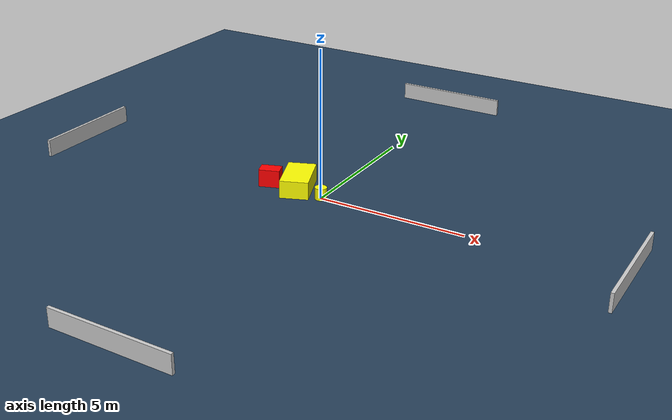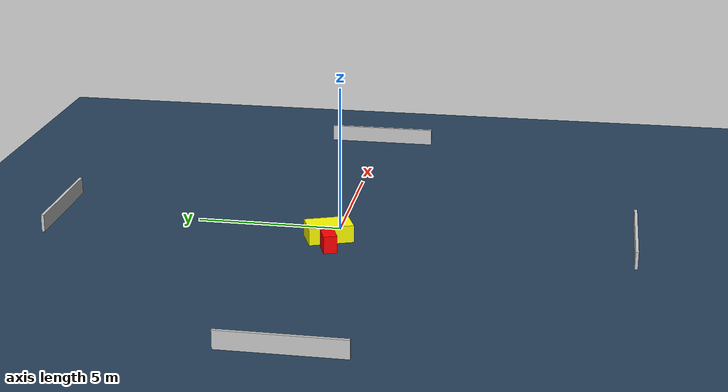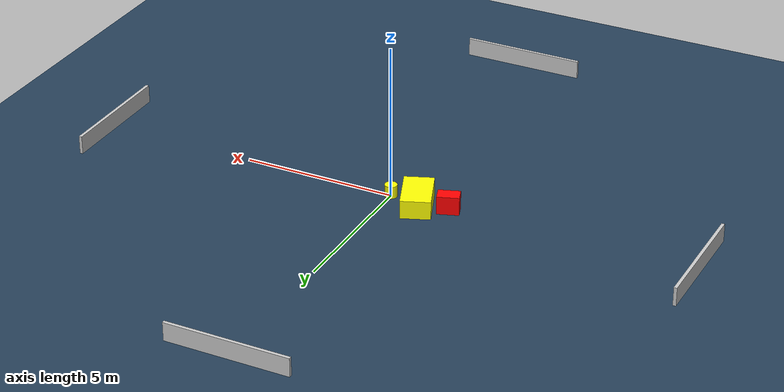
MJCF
<?xml version="1.0" ?>
<mujoco model="generated_environment">
  <option timestep="0.01" integrator="RK4" cone="elliptic"/>
  <default>
    <geom density="1"/>
  </default>
  <asset>
    <texture builtin="gradient" height="3072" name="skybox" rgb1="0.3 0.5 0.7" rgb2="0 0 0" type="skybox" width="512"/>
    <texture builtin="checker" height="300" name="groundplane" rgb1="0.2 0.3 0.4" rgb2="0.1 0.2 0.3" type="2d" width="300"/>
    <material name="groundplane" reflectance="0.2" texrepeat="5 5" texture="groundplane"/>
  </asset>
  <worldbody>
    <light dir="0 0 -1" directional="true" pos="0 0 1.5"/>
    <geom condim="3" friction="0.5 0.005 0.001" material="groundplane" name="floor" pos="0 0 0" size="0 0 0.05" type="plane"/>
    <body name="walls">
      <geom name="wall_1" condim="4" pos="-10.0 0.0 0.3" rgba="0.800000011920929 0.800000011920929 0.800000011920929 1.0" size="0.05 2.0 0.3" type="box"/>
      <geom name="wall_2" condim="4" pos="10.0 0.0 0.3" rgba="0.800000011920929 0.800000011920929 0.800000011920929 1.0" size="0.05 2.0 0.3" type="box"/>
      <geom name="wall_3" condim="4" pos="0.0 -10.0 0.3" rgba="0.800000011920929 0.800000011920929 0.800000011920929 1.0" size="2.0 0.05 0.3" type="box"/>
      <geom name="wall_4" condim="4" pos="0.0 10.0 0.3" rgba="0.800000011920929 0.800000011920929 0.800000011920929 1.0" size="2.0 0.05 0.3" type="box"/>
    </body>
    <body name="robot">
      <joint name="joint_x" type="slide" pos="0 0 0" axis="1 0 0"/>
      <joint name="joint_y" type="slide" pos="0 0 0" axis="0 1 0"/>
      <geom name="robot" type="cylinder" pos="0.0 0.0 0.2" size="0.2 0.2 0.0" mass="5.0" friction="1.0 0.005 0.0001" condim="4" rgba="1.0 1.0 0.0 1.0"/>
    </body>
    <body name="obstacle_1_movable">
      <geom name="obstacle_1_movable" condim="4" pos="-1.0075071644259979 0.22837580148515835 0.3" euler="0 0 111.47916344071015" friction="0.0 0.005 0.001" rgba="1.0 1.0 0.0 1.0" size="0.7715932909032557 0.47488777808284355 0.3" type="box" mass="0.1"/>
      <joint type="free"/>
    </body>
    <body name="obstacle_2_static">
      <geom name="obstacle_2_static" condim="4" pos="-1.9809512304702515 0.05963330639926637 0.3" euler="0 0 109.2747992195944" friction="0.0 0.005 0.001" rgba="1.0 0.0 0.0 1.0" size="0.2289114607268024 0.3515715885995425 0.3" type="box"/>
    </body>
  </worldbody>
  <actuator>
    <motor name="actuator_x" joint="joint_x" gear="1" ctrlrange="-1 1"/>
    <motor name="actuator_y" joint="joint_y" gear="1" ctrlrange="-1 1"/>
  </actuator>
</mujoco>
